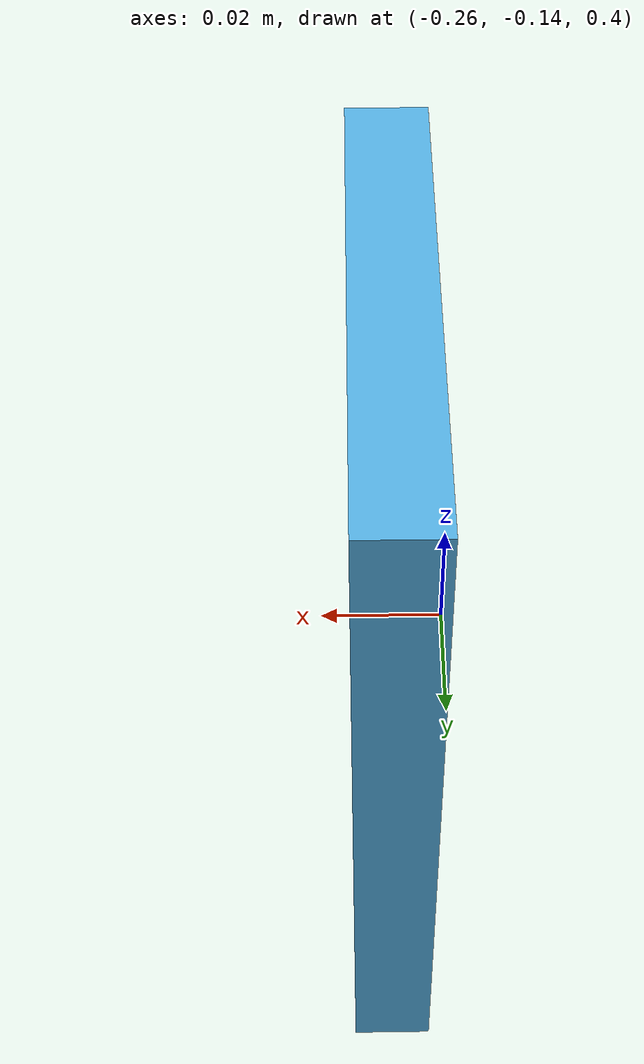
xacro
<robot
  name="own_wall" xmlns:xacro="http://www.ros.org/wiki/xacro">

  <xacro:include filename="$(find elfin_description)/urdf/materials.xacro" />

  <gazebo reference="own_wall">
    <visual name='visual'>
     <material>
       <script>
         <uri>file://media/materials/scripts/gazebo.material</uri>
         <name>Gazebo/Orange</name>
       </script>
     </material>
    </visual>
  </gazebo>

  <link name="world"/>

  <joint name="world_base" type="fixed">
    <origin
      xyz="0 0 0"
      rpy="0 0 0" />
    <parent
      link="world" />
    <child
      link="own_wall" />
  </joint>

  <link name="own_wall">
    <static> true </static>

    <visual>
      <origin xyz="-0.25 -0.1 0.45" rpy="0 0 0" />
      <geometry>
         <box size="0.01 0.07 0.1"/>
      </geometry>
    </visual>

    <collision>
      <origin xyz="-0.25 -0.1 0.45" rpy="0 0 0" />
      <geometry>
         <box size="0.01 0.07 0.1"/>
      </geometry>
    </collision>

    <inertial>
      <mass value="20" />
      <origin xyz="0 0 0" rpy="0 0 0"/>
      <inertia ixx="0.1" ixy="0" ixz="0" iyy="0.1" iyz="0" izz="0.1" />
    </inertial>
  </link>

</robot>
